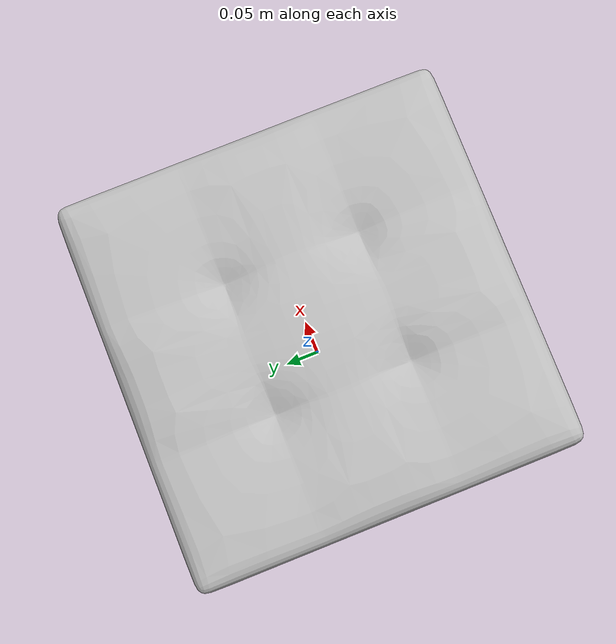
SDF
<?xml version='1.0'?>
<sdf version='1.4'>
  <model name='548'>
    <pose>0 0 0 0 0 0</pose>
    <static>true</static>
    <link name='link'>
      <collision name='collision'>
        <pose>0 0 0 0 0 0</pose>
        <geometry>
          <box>
            <size>0.399784 0.399784 2</size>
          </box>
        </geometry>
      </collision>
      <visual name='visual'>
        <pose>0 0 0 0 0 0</pose>
        <geometry>
          <mesh><uri>model://548/548.dae</uri></mesh>
        </geometry>
      </visual>
    </link>
  </model>
</sdf>
